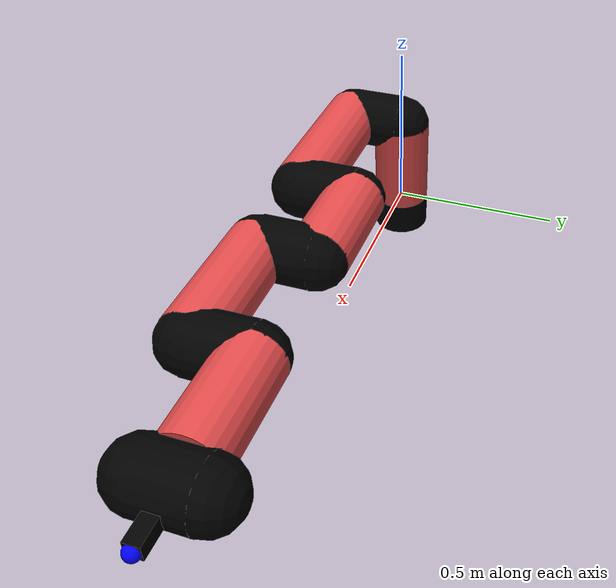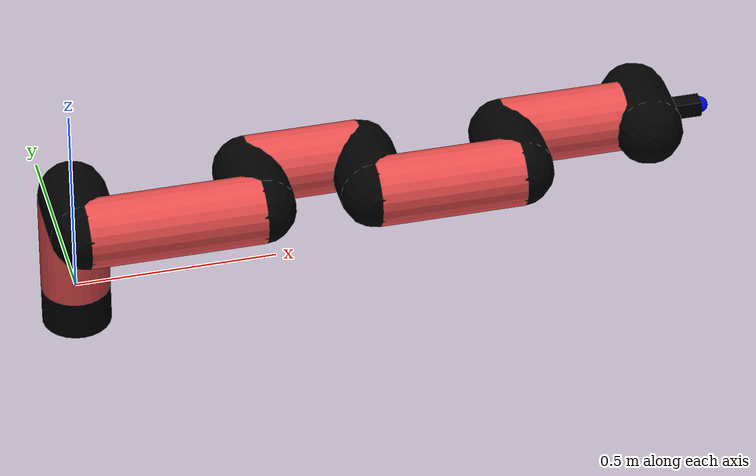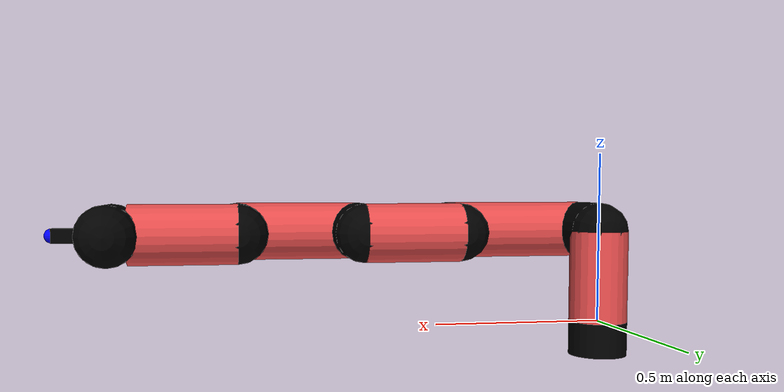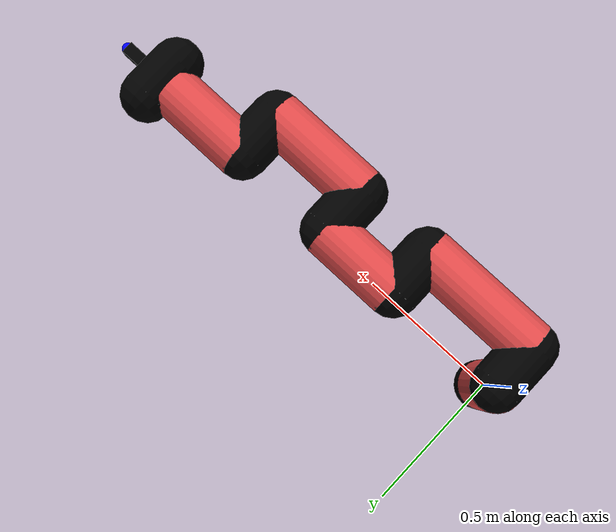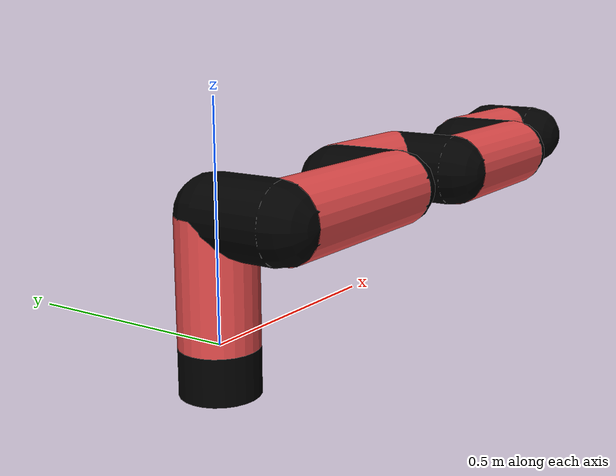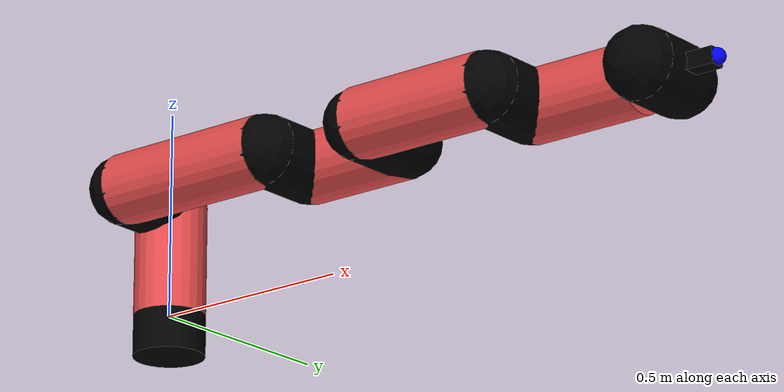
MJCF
<mujoco model="manipulator">
		<compiler angle="degree" coordinate="local" inertiafromgeom="auto" meshdir="meshes/"/>
		<option gravity="0 0 0" integrator="RK4" iterations="30" timestep="0.01"/>

		<default>
		<joint armature="1" limited="true" stiffness="10" damping="15" frictionloss="5.0"/>
		<geom conaffinity="1" condim="3" contype="1" friction=".5 .1 .1" margin="0.002"/>
		<motor ctrllimited="true"/>
		<position ctrllimited="true"/>
		</default>

		<asset>
		<texture builtin="gradient" height="100" rgb1="1.0 1.0 1.0" rgb2="1.0 1.0 1.0" type="skybox" width="100"/>
		<texture builtin="flat" height="32" name="arm_tex" rgb1="0.9 0.3 0.3" type="2d" width="32"/>
		<texture builtin="flat" height="32" name="gripper_tex" rgb1="0.0 0.0 0.0" type="cube" width="32"/>

		<material name="arm_mat" shininess="0.1" specular="0.1" texture="arm_tex"/>
		<material name="gripper_mat" shininess="1" specular="1" texture="gripper_tex"/>
		</asset>

		<worldbody>
		<light cutoff="45" diffuse=".8 .8 .8" dir="0 0.16 -1" directional="false" name="light" pos="0 -2.0 8.0" specular="0.3 0.3 0.3"/>

		<body name="base_link" pos="0 0 -0.1">
		<geom fromto="0 0 0 0 0 0.1" material="arm_mat" name="base_link" rgba="0.0 0.0 0.0 1" size="0.085" type="cylinder"/>
		</body>

		<body name="l1" pos="0 0 0">
<geom fromto="0 0 0 0 0 0.27" material="arm_mat" name="l1" rgba="0.9 0.3 0.3 1" size="0.085" type="cylinder"/>
<geom fromto="0 0 0.27 0 -0.16 0.27" material="arm_mat" name="l1_ex" rgba="0.0 0.0 0.0 1" size="0.085" type="capsule"/>
<joint axis="0 0 1" name="j1" pos="0 0 0" range="-90 90" damping="35.57" frictionloss="12.0"/>

<body name="l2" pos="0 -0.16 0.27">
<geom fromto="0 0 0 0.43 0 0" material="arm_mat" name="l2" rgba="0.9 0.3 0.3 1" size="0.085" type="cylinder"/>
<geom fromto="0.43 0 0 0.43 0.16 0" material="arm_mat" name="l2_ex" rgba="0.0 0.0 0.0 1" size="0.085" type="capsule"/>
<joint axis="-0.15 0.88 0.12" name="j2" pos="0 0 0" range="-90 60" damping="27.42" frictionloss="12.44"/>

<body name="l3" pos="0.43 0.16 0">
<geom fromto="0 0 0 0.28 0 0" material="arm_mat" name="l3" rgba="0.9 0.3 0.3 1" size="0.085" type="cylinder"/>
<geom fromto="0.28 0 0 0.28 -0.16 0" material="arm_mat" name="l3_ex" rgba="0.0 0.0 0.0 1" size="0.085" type="capsule"/>
<joint axis="-0.15 1.04 0.24" name="j3" pos="0 0 0" range="-30 60" damping="25.7" frictionloss="10.87"/>

<body name="l4" pos="0.28 -0.16 0">
<geom fromto="0 0 0 0.36 0 0" material="arm_mat" name="l4" rgba="0.9 0.3 0.3 1" size="0.085" type="cylinder"/>
<geom fromto="0.36 0 0 0.36 0.16 0" material="arm_mat" name="l4_ex" rgba="0.0 0.0 0.0 1" size="0.085" type="capsule"/>
<joint axis="0.17 0.87 -0.0" name="j4" pos="0 0 0" range="-30 60" damping="27.66" frictionloss="11.91"/>

<body name="l5" pos="0.36 0.16 0">
<geom fromto="0 0 0 0.3 0 0" material="arm_mat" name="l5" rgba="0.9 0.3 0.3 1" size="0.085" type="cylinder"/>
<joint axis="0.06 1.16 -0.17" name="j5" pos="0 0 0" range="-30 60" damping="37.28" frictionloss="8.67"/>

<body name="gripper" pos="0.3 0 0">
<geom fromto="0.05 -0.07 0 0.05 0.07 0" material="gripper_mat" name="gripper" rgba="0.0 0.0 0.0 1" size="0.085" type="capsule"/><joint axis="1 0 0" name="j6" pos="0 0 0" range="-90 90" damping="15" frictionloss="5.0"/><body name="finger" pos="0.1 0 0">
<geom fromto="0 0.0 0 0.1 0.0 0" material="gripper_mat" name="finger" rgba="0.0 0.0 0.0 1" size="0.020 0.06 0.06" type="box"/>
</body>
<site name="current" pos="0.2 0. 0.0" rgba="0. 0. 1.0 1" size="0.02" type="sphere"/>
</body>
</body>
</body>
</body>
</body>
</body>
</worldbody>
<actuator>
<motor ctrllimited="true" ctrlrange="-1.0 1.0" joint="j1" gear="60.72"/>
<motor ctrllimited="true" ctrlrange="-1.0 1.0" joint="j2" gear="91.31"/>
<motor ctrllimited="true" ctrlrange="-1.0 1.0" joint="j3" gear="93.51"/>
<motor ctrllimited="true" ctrlrange="-1.0 1.0" joint="j4" gear="87.48"/>
<motor ctrllimited="true" ctrlrange="-1.0 1.0" joint="j5" gear="89.02"/>
<motor ctrllimited="true" ctrlrange="-1.0 1.0" joint="j6" gear="80"/>
</actuator>
</mujoco>
